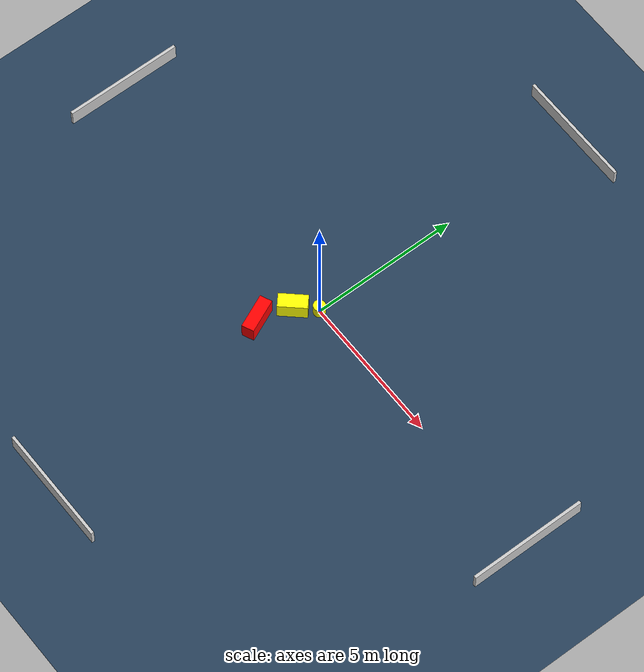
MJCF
<?xml version="1.0" ?>
<mujoco model="generated_environment">
  <option timestep="0.01" integrator="RK4" cone="elliptic"/>
  <default>
    <geom density="1"/>
  </default>
  <asset>
    <texture builtin="gradient" height="3072" name="skybox" rgb1="0.3 0.5 0.7" rgb2="0 0 0" type="skybox" width="512"/>
    <texture builtin="checker" height="300" name="groundplane" rgb1="0.2 0.3 0.4" rgb2="0.1 0.2 0.3" type="2d" width="300"/>
    <material name="groundplane" reflectance="0.2" texrepeat="5 5" texture="groundplane"/>
  </asset>
  <worldbody>
    <light dir="0 0 -1" directional="true" pos="0 0 1.5"/>
    <geom condim="3" friction="0.5 0.005 0.001" material="groundplane" name="floor" pos="0 0 0" size="0 0 0.05" type="plane"/>
    <body name="walls">
      <geom name="wall_1" condim="4" pos="-10.0 0.0 0.3" rgba="0.800000011920929 0.800000011920929 0.800000011920929 1.0" size="0.05 2.0 0.3" type="box"/>
      <geom name="wall_2" condim="4" pos="10.0 0.0 0.3" rgba="0.800000011920929 0.800000011920929 0.800000011920929 1.0" size="0.05 2.0 0.3" type="box"/>
      <geom name="wall_3" condim="4" pos="0.0 -10.0 0.3" rgba="0.800000011920929 0.800000011920929 0.800000011920929 1.0" size="2.0 0.05 0.3" type="box"/>
      <geom name="wall_4" condim="4" pos="0.0 10.0 0.3" rgba="0.800000011920929 0.800000011920929 0.800000011920929 1.0" size="2.0 0.05 0.3" type="box"/>
    </body>
    <body name="robot">
      <joint name="joint_x" type="slide" pos="0 0 0" axis="1 0 0"/>
      <joint name="joint_y" type="slide" pos="0 0 0" axis="0 1 0"/>
      <geom name="robot" type="cylinder" pos="0.0 0.0 0.2" size="0.2 0.2 0.0" mass="5.0" friction="1.0 0.005 0.0001" condim="4" rgba="1.0 1.0 0.0 1.0"/>
    </body>
    <body name="obstacle_1_movable">
      <geom name="obstacle_1_movable" condim="4" pos="-0.5388700001646471 -0.6013118283474723 0.3" euler="0 0 227.98886122068848" friction="0.0 0.005 0.001" rgba="1.0 1.0 0.0 1.0" size="0.4740979598136851 0.2352544563361179 0.3" type="box" mass="0.1"/>
      <joint type="free"/>
    </body>
    <body name="obstacle_2_static">
      <geom name="obstacle_2_static" condim="4" pos="-0.8639751955454916 -1.7279327904056905 0.3" euler="0 0 204.0019431109737" friction="0.0 0.005 0.001" rgba="1.0 0.0 0.0 1.0" size="0.20705331685981637 0.5872058747241229 0.3" type="box"/>
    </body>
  </worldbody>
  <actuator>
    <motor name="actuator_x" joint="joint_x" gear="1" ctrlrange="-1 1"/>
    <motor name="actuator_y" joint="joint_y" gear="1" ctrlrange="-1 1"/>
  </actuator>
</mujoco>
